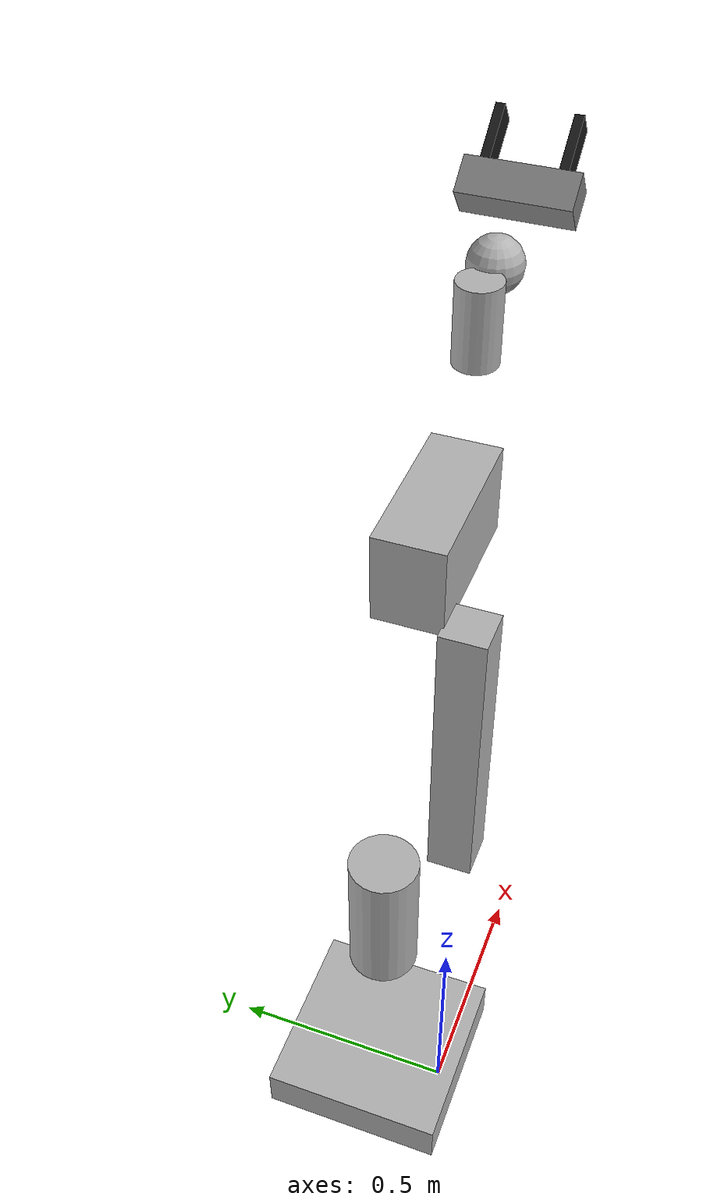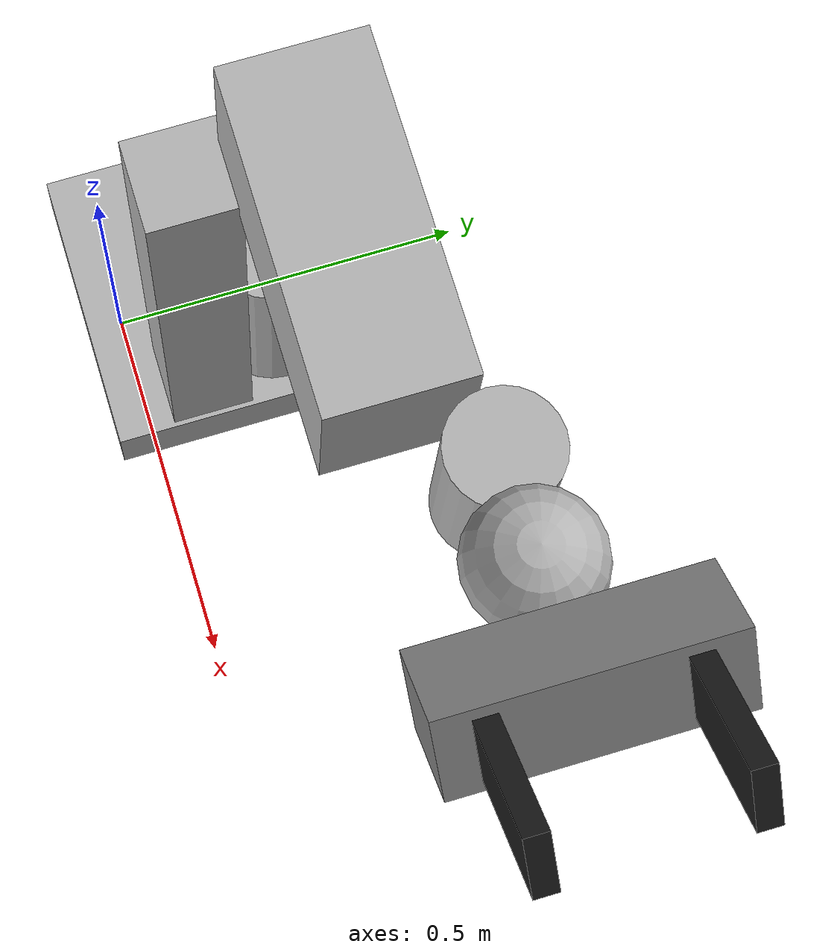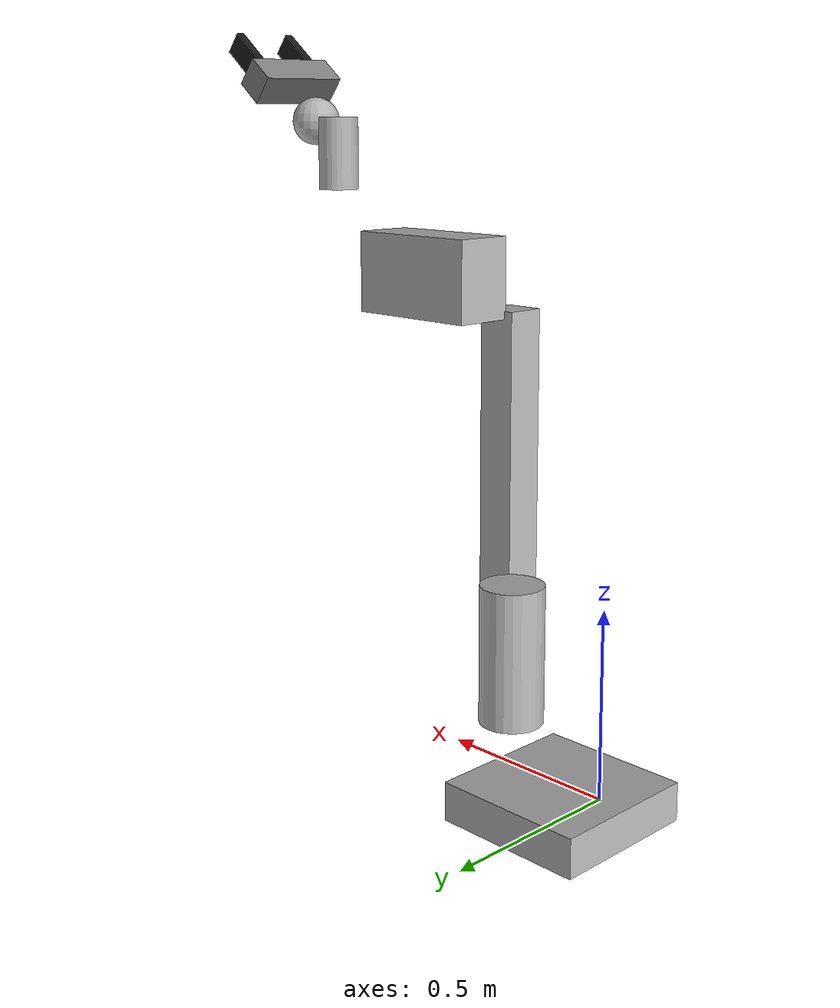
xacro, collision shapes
<?xml version="1.0" ?>
<robot name="Assembly" xmlns:xacro="http://www.ros.org/wiki/xacro">

<xacro:include filename="$(find gripper)/urdf/gripper.urdf.xacro" />
<xacro:property name="package_path" value="$(find assembly)" />
<xacro:include filename="${package_path}/urdf/materials.xacro" />
<xacro:include filename="${package_path}/urdf/Assembly.trans" />
<xacro:include filename="${package_path}/urdf/Assembly.gazebo" />
<xacro:include filename="${package_path}/urdf/Assembly.ros2_control.xacro" />

<!-- World link for Gazebo - fixes robot to ground -->
<link name="world"/>

<joint name="world_joint" type="fixed">
  <parent link="world"/>
  <child link="base_link"/>
  <origin xyz="0 0 0" rpy="0 0 0"/>
</joint>

<!-- BASE LINK - Robot tabanı -->
<link name="base_link">
  <inertial>
    <origin xyz="0.0 0.158 0.053" rpy="0 0 0"/>
    <mass value="50.0"/>
    <inertia ixx="1.5" iyy="1.3" izz="1.6" ixy="0.0" iyz="0.0" ixz="0.0"/>
  </inertial>
  <visual>
    <origin xyz="0 0 0" rpy="0 0 0"/>
    <geometry>
      <mesh filename="package://assembly/meshes/base_link.stl" scale="0.001 0.001 0.001"/>
    </geometry>
    <material name="silver"/>
  </visual>
  <collision>
    <origin xyz="0 0.15 0.05" rpy="0 0 0"/>
    <geometry>
      <box size="0.4 0.4 0.1"/>
    </geometry>
  </collision>
</link>

<!-- LINK 1 - İlk döner eklem -->
<link name="link1_1">
  <inertial>
    <origin xyz="0.146 -0.001 0.157" rpy="0 0 0"/>
    <mass value="15.0"/>
    <inertia ixx="0.3" iyy="0.5" izz="0.4" ixy="0.0" iyz="0.0" ixz="0.0"/>
  </inertial>
  <visual>
    <origin xyz="-0.0 -0.191165 -0.257989" rpy="0 0 0"/>
    <geometry>
      <mesh filename="package://assembly/meshes/link1_1.stl" scale="0.001 0.001 0.001"/>
    </geometry>
    <material name="silver"/>
  </visual>
  <collision>
    <origin xyz="0.13 0 0.15" rpy="0 0 0"/>
    <geometry>
      <cylinder radius="0.08" length="0.35"/>
    </geometry>
  </collision>
</link>

<!-- LINK 2 - Uzun kol parçası -->
<link name="link2_1">
  <inertial>
    <origin xyz="0.0 -0.097 0.314" rpy="0 0 0"/>
    <mass value="12.0"/>
    <inertia ixx="0.5" iyy="0.5" izz="0.06" ixy="0.0" iyz="0.0" ixz="0.0"/>
  </inertial>
  <visual>
    <origin xyz="-0.26 -0.116165 -0.526989" rpy="0 0 0"/>
    <geometry>
      <mesh filename="package://assembly/meshes/link2_1.stl" scale="0.001 0.001 0.001"/>
    </geometry>
    <material name="silver"/>
  </visual>
  <collision>
    <origin xyz="0 -0.05 0.35" rpy="0 0 0"/>
    <geometry>
      <box size="0.1 0.1 0.7"/>
    </geometry>
  </collision>
</link>

<!-- LINK 3 - Orta kol parçası -->
<link name="link3_1">
  <inertial>
    <origin xyz="0.096 0.114 0.064" rpy="0 0 0"/>
    <mass value="10.0"/>
    <inertia ixx="0.18" iyy="0.36" izz="0.22" ixy="0.0" iyz="0.0" ixz="0.0"/>
  </inertial>
  <visual>
    <origin xyz="-0.26 -0.086165 -1.206989" rpy="0 0 0"/>
    <geometry>
      <mesh filename="package://assembly/meshes/link3_1.stl" scale="0.001 0.001 0.001"/>
    </geometry>
    <material name="silver"/>
  </visual>
  <collision>
    <origin xyz="0.15 0.1 0.1" rpy="0 0 0"/>
    <geometry>
      <box size="0.35 0.15 0.2"/>
    </geometry>
  </collision>
</link>

<!-- LINK 4 - Bilek parçası -->
<link name="link4_1">
  <inertial>
    <origin xyz="0.088 0.009 0.081" rpy="0 0 0"/>
    <mass value="2.0"/>
    <inertia ixx="0.008" iyy="0.013" izz="0.009" ixy="0.0" iyz="0.0" ixz="0.0"/>
  </inertial>
  <visual>
    <origin xyz="-0.626374 -0.216165 -1.512515" rpy="0 0 0"/>
    <geometry>
      <mesh filename="package://assembly/meshes/link4_1.stl" scale="0.001 0.001 0.001"/>
    </geometry>
    <material name="silver"/>
  </visual>
  <collision>
    <origin xyz="0.09 0 0.08" rpy="0 0 0"/>
    <geometry>
      <cylinder radius="0.05" length="0.18"/>
    </geometry>
  </collision>
</link>

<!-- LINK 5 - Uç efektör -->
<link name="link5_1">
  <inertial>
    <origin xyz="0.042 0.059 0.032" rpy="0 0 0"/>
    <mass value="1.5"/>
    <inertia ixx="0.01" iyy="0.006" izz="0.012" ixy="0.0" iyz="0.0" ixz="0.0"/>
  </inertial>
  <visual>
    <origin xyz="-0.766285 -0.152165 -1.641065" rpy="0 0 0"/>
    <geometry>
      <mesh filename="package://assembly/meshes/link5_1.stl" scale="0.001 0.001 0.001"/>
    </geometry>
    <material name="silver"/>
  </visual>
  <collision>
    <origin xyz="0.04 0.06 0.03" rpy="0 0 0"/>
    <geometry>
      <sphere radius="0.06"/>
    </geometry>
  </collision>
</link>

<!-- JOINTS - Moderate damping, position held by ros2_control -->
<joint name="Revolute 20" type="continuous">
  <origin xyz="0.0 0.191165 0.257989" rpy="0 0 0"/>
  <parent link="base_link"/>
  <child link="link1_1"/>
  <axis xyz="0.0 0.0 1.0"/>
  <dynamics damping="5.0" friction="1.0"/>
</joint>

<joint name="Revolute 21" type="continuous">
  <origin xyz="0.26 -0.075 0.269" rpy="0 0 0"/>
  <parent link="link1_1"/>
  <child link="link2_1"/>
  <axis xyz="0.0 -1.0 0.0"/>
  <dynamics damping="10.0" friction="2.0"/>
</joint>

<joint name="Revolute 22" type="continuous">
  <origin xyz="0.0 -0.03 0.68" rpy="0 0 0"/>
  <parent link="link2_1"/>
  <child link="link3_1"/>
  <axis xyz="0.0 1.0 0.0"/>
  <dynamics damping="8.0" friction="1.5"/>
</joint>

<joint name="Revolute 23" type="continuous">
  <origin xyz="0.366374 0.13 0.305526" rpy="0 0 0"/>
  <parent link="link3_1"/>
  <child link="link4_1"/>
  <axis xyz="0.736369 0.0 0.67658"/>
  <dynamics damping="5.0" friction="1.0"/>
</joint>

<joint name="Revolute 24" type="continuous">
  <origin xyz="0.139911 -0.064 0.12855" rpy="0 0 0"/>
  <parent link="link4_1"/>
  <child link="link5_1"/>
  <axis xyz="-0.0 -1.0 0.0"/>
  <dynamics damping="3.0" friction="0.5"/>
</joint>

<xacro:gripper parent_link="link5_1" />

</robot>

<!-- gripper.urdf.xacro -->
<robot xmlns:xacro="http://www.ros.org/wiki/xacro" name="gripper">

  <!-- Materials & Inertia Helper -->
  <material name="gripper_grey"><color rgba="0.5 0.5 0.5 1.0"/></material>
  <material name="gripper_black"><color rgba="0.1 0.1 0.1 1.0"/></material>

  <xacro:macro name="box_inertia" params="m w h d">
    <inertial>
      <mass value="${m}"/>
      <inertia ixx="${(m/12) * (h*h + d*d)}" ixy="0.0" ixz="0.0"
               iyy="${(m/12) * (w*w + d*d)}" iyz="0.0"
               izz="${(m/12) * (w*w + h*h)}"/>
    </inertial>
  </xacro:macro>

  <!-- MAIN MACRO START -->
  <xacro:macro name="gripper" params="parent_link">

    <!-- 1. Joint connecting gripper to the passed parent_link -->
    <joint name="gripper_base_joint" type="fixed">
      <parent link="${parent_link}"/>
      <child link="gripper_base_link"/>
      <origin xyz="0.15 0.05 0.13" rpy="0.900 0 1.5708"/>
    </joint>

    <!-- 2. Gripper Links -->
    <link name="gripper_base_link">
      <visual>
        <geometry><box size="0.24 0.08 0.08"/></geometry>
        <material name="gripper_grey"/>
      </visual>
      <collision>
        <geometry><box size="0.24 0.08 0.08"/></geometry>
      </collision>
      <xacro:box_inertia m="1.0" w="0.24" h="0.08" d="0.08"/>
    </link>

    <link name="right_finger">
      <visual>
        <origin xyz="0 0 0.08"/>
        <geometry><box size="0.02 0.06 0.16"/></geometry>
        <material name="gripper_black"/>
      </visual>
      <collision>
        <origin xyz="0 0 0.08"/>
        <geometry><box size="0.02 0.06 0.16"/></geometry>
        <surface>
          <friction>
            <ode><mu>100.0</mu><mu2>100.0</mu2></ode>
          </friction>
        </surface>
      </collision>
      <xacro:box_inertia m="0.2" w="0.02" h="0.16" d="0.06"/>
    </link>

    <link name="left_finger">
      <visual>
        <origin xyz="0 0 0.08"/>
        <geometry><box size="0.02 0.06 0.16"/></geometry>
        <material name="gripper_black"/>
      </visual>
      <collision>
        <origin xyz="0 0 0.08"/>
        <geometry><box size="0.02 0.06 0.16"/></geometry>
        <surface>
          <friction>
            <ode><mu>100.0</mu><mu2>100.0</mu2></ode>
          </friction>
        </surface>
      </collision>
      <xacro:box_inertia m="0.2" w="0.02" h="0.16" d="0.06"/>
    </link>

    <joint name="right_finger_joint" type="prismatic">
      <parent link="gripper_base_link"/>
      <child link="right_finger"/>
      <origin xyz="0.08 0 0" rpy="0 0 0"/>
      <axis xyz="1 0 0"/>
      <limit lower="-0.08" upper="0.08" effort="100" velocity="0.5"/>
    </joint>

    <joint name="left_finger_joint" type="prismatic">
      <parent link="gripper_base_link"/>
      <child link="left_finger"/>
      <origin xyz="-0.08 0 0" rpy="0 0 0"/>
      <axis xyz="-1 0 0"/>
      <limit lower="-0.08" upper="0.08" effort="100" velocity="0.5"/>
    </joint>

    <!-- 3. ros2_control for gripper -->
    <ros2_control name="GripperSystem" type="system">
      <hardware>
        <plugin>gz_ros2_control/GazeboSimSystem</plugin>
      </hardware>
      <joint name="right_finger_joint">
        <command_interface name="position"/>
        <state_interface name="position"/>
        <state_interface name="velocity"/>
      </joint>
      <joint name="left_finger_joint">
        <command_interface name="position"/>
        <state_interface name="position"/>
        <state_interface name="velocity"/>
      </joint>
    </ros2_control>

  </xacro:macro>
  <!-- MACRO END -->
</robot>

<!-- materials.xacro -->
<robot name="Assembly" xmlns:xacro="http://www.ros.org/wiki/xacro" >

<material name="silver">
  <color rgba="0.700 0.700 0.700 1.000"/>
</material>

</robot>

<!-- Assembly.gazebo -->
<robot name="Assembly" xmlns:xacro="http://www.ros.org/wiki/xacro" >

<xacro:property name="body_color" value="Gazebo/Grey" />

<!-- Joint State Publisher Plugin - publishes joint states to ROS2 -->
<gazebo>
  <plugin name="gazebo_ros_joint_state_publisher" filename="libgazebo_ros_joint_state_publisher.so">
    <update_rate>100</update_rate>
    <joint_name>Revolute 20</joint_name>
    <joint_name>Revolute 21</joint_name>
    <joint_name>Revolute 22</joint_name>
    <joint_name>Revolute 23</joint_name>
    <joint_name>Revolute 24</joint_name>
  </plugin>
</gazebo>

<!-- Gazebo joint settings with implicit spring damper for stability -->
<gazebo reference="Revolute 20">
  <implicitSpringDamper>true</implicitSpringDamper>
  <provideFeedback>true</provideFeedback>
  <stopCfm>0.0</stopCfm>
  <stopErp>0.2</stopErp>
</gazebo>

<gazebo reference="Revolute 21">
  <implicitSpringDamper>true</implicitSpringDamper>
  <provideFeedback>true</provideFeedback>
  <stopCfm>0.0</stopCfm>
  <stopErp>0.2</stopErp>
</gazebo>

<gazebo reference="Revolute 22">
  <implicitSpringDamper>true</implicitSpringDamper>
  <provideFeedback>true</provideFeedback>
  <stopCfm>0.0</stopCfm>
  <stopErp>0.2</stopErp>
</gazebo>

<gazebo reference="Revolute 23">
  <implicitSpringDamper>true</implicitSpringDamper>
  <provideFeedback>true</provideFeedback>
  <stopCfm>0.0</stopCfm>
  <stopErp>0.2</stopErp>
</gazebo>

<gazebo reference="Revolute 24">
  <implicitSpringDamper>true</implicitSpringDamper>
  <provideFeedback>true</provideFeedback>
  <stopCfm>0.0</stopCfm>
  <stopErp>0.2</stopErp>
</gazebo>

<!-- Link materials and physics properties -->
<gazebo reference="base_link">
  <material>Gazebo/DarkGrey</material>
  <kp>1000000.0</kp>
  <kd>100.0</kd>
  <mu1>1.0</mu1>
  <mu2>1.0</mu2>
  <selfCollide>false</selfCollide>
</gazebo>

<gazebo reference="link1_1">
  <material>${body_color}</material>
  <kp>1000000.0</kp>
  <kd>100.0</kd>
  <mu1>0.5</mu1>
  <mu2>0.5</mu2>
  <selfCollide>false</selfCollide>
</gazebo>

<gazebo reference="link2_1">
  <material>${body_color}</material>
  <kp>1000000.0</kp>
  <kd>100.0</kd>
  <mu1>0.5</mu1>
  <mu2>0.5</mu2>
  <selfCollide>false</selfCollide>
</gazebo>

<gazebo reference="link3_1">
  <material>${body_color}</material>
  <kp>1000000.0</kp>
  <kd>100.0</kd>
  <mu1>0.5</mu1>
  <mu2>0.5</mu2>
  <selfCollide>false</selfCollide>
</gazebo>

<gazebo reference="link4_1">
  <material>${body_color}</material>
  <kp>1000000.0</kp>
  <kd>100.0</kd>
  <mu1>0.5</mu1>
  <mu2>0.5</mu2>
  <selfCollide>false</selfCollide>
</gazebo>

<gazebo reference="link5_1">
  <material>Gazebo/Red</material>
  <kp>1000000.0</kp>
  <kd>100.0</kd>
  <mu1>0.8</mu1>
  <mu2>0.8</mu2>
  <selfCollide>false</selfCollide>
</gazebo>

</robot>
